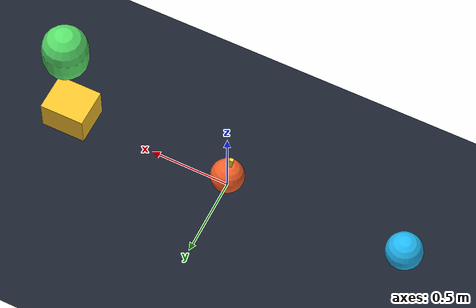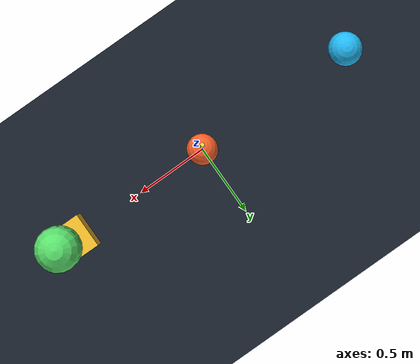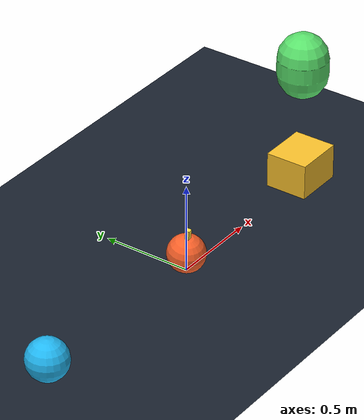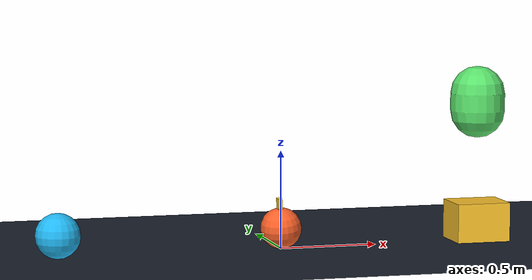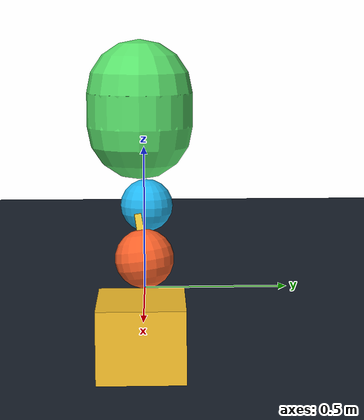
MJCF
<mujoco model="spin and grip arcade">
  <compiler angle="radian" autolimits="true"/>
  <option timestep="0.002" gravity="0 0 -9.81" integrator="Euler"
          cone="elliptic" iterations="512" tolerance="1e-5"/>
  <visual>
    <global offwidth="960" offheight="640"/>
    <quality shadowsize="2048"/>
    <map znear="0.01" zfar="30"/>
  </visual>
  <default>
    <joint damping="0" armature="0"/>
    <geom condim="3" friction="0.8 0.12 0.03" solref="0.004 1"
          solimp="0.95 0.99 0.001" rgba="0.8 0.8 0.8 1"/>
  </default>
  <worldbody>
    <light pos="0 0 6" dir="0 0 -1" diffuse="0.9 0.9 0.9"/>
    <geom name="table" type="plane" size="5 3 .1" rgba=".10 .13 .18 1"
          contype="1" conaffinity="22" friction=".01 .001 .001"/>

    <body name="roll_runner" pos="-1.15 0 .11">
      <freejoint name="roll_free"/>
      <geom name="roll_geom" type="sphere" size=".115" mass=".35"
            condim="6" friction=".9 .12 .18" contype="2" conaffinity="1"
            rgba=".13 .72 .95 1"/>
    </body>

    <body name="spin_top" pos="0 0 .104" euler=".15 -.1 .1">
      <freejoint name="spin_free"/>
      <geom name="spin_geom" type="sphere" size=".105" mass=".5"
            condim="4" friction=".9 .48 .04" contype="4" conaffinity="1"
            rgba=".98 .38 .16 1"/>
      <geom name="spin_marker" type="box" pos="0 0 .08" size=".012 .012 .08"
            contype="0" conaffinity="0" rgba="1 .86 .25 1"/>
    </body>

    <body name="grip_object" pos="1.05 0 .105">
      <joint name="grip_slide" type="slide" axis="1 0 0"/>
      <geom name="grip_geom" type="box" size=".14 .12 .1" mass=".5"
            condim="3" friction=".02 .005 .001" contype="16" conaffinity="9"
            rgba=".98 .76 .17 1"/>
    </body>

    <body name="press_pad" pos="1.05 0 .72">
      <joint name="pad_slide" type="slide" axis="0 0 -1" range="0 .62"
             limited="true"/>
      <geom name="pad_geom" type="capsule" size=".14 .045" mass=".3"
            condim="3" friction=".9 .12 .03" contype="8" conaffinity="16"
            rgba=".35 .88 .42 1"/>
    </body>
  </worldbody>
  <actuator>
    <motor name="press_motor" joint="pad_slide" ctrlrange="-25 25"/>
  </actuator>
</mujoco>
